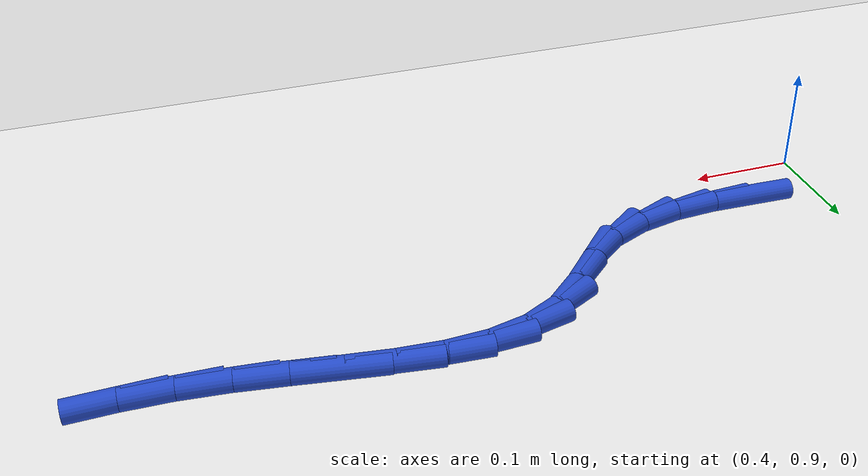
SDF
<sdf version="1.6">
 <world name="default">
  <model name="ground_plane">
   <static>1</static>
   <link name="link">
    <collision name="collision">
     <geometry><plane><normal>0 0 1</normal><size>100 100</size></plane></geometry>
     <surface><friction><ode><mu>100</mu><mu2>50</mu2></ode></friction></surface>
    </collision>
    <visual name="visual">
     <cast_shadows>0</cast_shadows>
     <geometry><plane><normal>0 0 1</normal><size>100 100</size></plane></geometry>
     <material>
      <script><uri>file://media/materials/scripts/gazebo.material</uri><name>Gazebo/WhiteGlow</name></script>
     </material>
    </visual>
   </link>
  </model>
  <model name="line">
   <link name="link_31">
    <pose>0.4720004129926945 0.955242696194853 0.01 0 1.57 -0.0336519585227161</pose>
    <collision name="collision">
     <geometry><cylinder><radius>0.01</radius><length>0.08</length></cylinder></geometry>
    </collision>
    <visual name="visual">
     <material>
      <script><name>Gazebo/Blue</name><uri>file://media/materials/scripts/gazebo.material</uri></script>
     </material>
     <geometry><cylinder><radius>0.01</radius><length>0.08</length></cylinder></geometry>
    </visual>
   </link>
   <link name="link_32">
    <pose>0.5142116258820052 0.9538216697531656 0.01 0 1.57 0.06054621515569539</pose>
    <collision name="collision">
     <geometry><cylinder><radius>0.01</radius><length>0.08</length></cylinder></geometry>
    </collision>
    <visual name="visual">
     <material>
      <script><name>Gazebo/Blue</name><uri>file://media/materials/scripts/gazebo.material</uri></script>
     </material>
     <geometry><cylinder><radius>0.01</radius><length>0.08</length></cylinder></geometry>
    </visual>
   </link>
   <link name="link_33">
    <pose>0.5547674628831326 0.9562801770887599 0.01 0 1.57 0.20453902527993625</pose>
    <collision name="collision">
     <geometry><cylinder><radius>0.01</radius><length>0.08</length></cylinder></geometry>
    </collision>
    <visual name="visual">
     <material>
      <script><name>Gazebo/Blue</name><uri>file://media/materials/scripts/gazebo.material</uri></script>
     </material>
     <geometry><cylinder><radius>0.01</radius><length>0.08</length></cylinder></geometry>
    </visual>
   </link>
   <link name="link_34">
    <pose>0.5927562676670054 0.9641605732342813 0.01 0 1.57 0.4062274194706462</pose>
    <collision name="collision">
     <geometry><cylinder><radius>0.01</radius><length>0.08</length></cylinder></geometry>
    </collision>
    <visual name="visual">
     <material>
      <script><name>Gazebo/Blue</name><uri>file://media/materials/scripts/gazebo.material</uri></script>
     </material>
     <geometry><cylinder><radius>0.01</radius><length>0.08</length></cylinder></geometry>
    </visual>
   </link>
   <link name="link_35">
    <pose>0.6272663839045518 0.9790052132223739 0.01 0 1.57 0.6578633749273951</pose>
    <collision name="collision">
     <geometry><cylinder><radius>0.01</radius><length>0.08</length></cylinder></geometry>
    </collision>
    <visual name="visual">
     <material>
      <script><name>Gazebo/Blue</name><uri>file://media/materials/scripts/gazebo.material</uri></script>
     </material>
     <geometry><cylinder><radius>0.01</radius><length>0.08</length></cylinder></geometry>
    </visual>
   </link>
   <link name="link_36">
    <pose>0.6574138727485572 1.0022997852741065 0.01 0 1.57 0.8253862525907413</pose>
    <collision name="collision">
     <geometry><cylinder><radius>0.01</radius><length>0.08</length></cylinder></geometry>
    </collision>
    <visual name="visual">
     <material>
      <script><name>Gazebo/Blue</name><uri>file://media/materials/scripts/gazebo.material</uri></script>
     </material>
     <geometry><cylinder><radius>0.01</radius><length>0.08</length></cylinder></geometry>
    </visual>
   </link>
   <link name="link_37">
    <pose>0.6843141848363187 1.0314423397881645 0.01 0 1.57 0.7411923184719813</pose>
    <collision name="collision">
     <geometry><cylinder><radius>0.01</radius><length>0.08</length></cylinder></geometry>
    </collision>
    <visual name="visual">
     <material>
      <script><name>Gazebo/Blue</name><uri>file://media/materials/scripts/gazebo.material</uri></script>
     </material>
     <geometry><cylinder><radius>0.01</radius><length>0.08</length></cylinder></geometry>
    </visual>
   </link>
   <link name="link_38">
    <pose>0.7123673513474473 1.0571187946323337 0.01 0 1.57 0.4728027053657131</pose>
    <collision name="collision">
     <geometry><cylinder><radius>0.01</radius><length>0.08</length></cylinder></geometry>
    </collision>
    <visual name="visual">
     <material>
      <script><name>Gazebo/Blue</name><uri>file://media/materials/scripts/gazebo.material</uri></script>
     </material>
     <geometry><cylinder><radius>0.01</radius><length>0.08</length></cylinder></geometry>
    </visual>
   </link>
   <link name="link_39">
    <pose>0.7443828003029087 1.0734945949288803 0.01 0 1.57 0.22557276805663648</pose>
    <collision name="collision">
     <geometry><cylinder><radius>0.01</radius><length>0.08</length></cylinder></geometry>
    </collision>
    <visual name="visual">
     <material>
      <script><name>Gazebo/Blue</name><uri>file://media/materials/scripts/gazebo.material</uri></script>
     </material>
     <geometry><cylinder><radius>0.01</radius><length>0.08</length></cylinder></geometry>
    </visual>
   </link>
   <link name="link_40">
    <pose>0.7799697166015482 1.0816610171792371 0.01 0 1.57 0.04451069179883939</pose>
    <collision name="collision">
     <geometry><cylinder><radius>0.01</radius><length>0.08</length></cylinder></geometry>
    </collision>
    <visual name="visual">
     <material>
      <script><name>Gazebo/Blue</name><uri>file://media/materials/scripts/gazebo.material</uri></script>
     </material>
     <geometry><cylinder><radius>0.01</radius><length>0.08</length></cylinder></geometry>
    </visual>
   </link>
   <link name="link_41">
    <pose>0.8184301399083151 1.0833740486639005 0.01 0 1.57 -0.0733100187703516</pose>
    <collision name="collision">
     <geometry><cylinder><radius>0.01</radius><length>0.08</length></cylinder></geometry>
    </collision>
    <visual name="visual">
     <material>
      <script><name>Gazebo/Blue</name><uri>file://media/materials/scripts/gazebo.material</uri></script>
     </material>
     <geometry><cylinder><radius>0.01</radius><length>0.08</length></cylinder></geometry>
    </visual>
   </link>
   <link name="link_42">
    <pose>0.8590661098881578 1.0803896766633683 0.01 0 1.57 -0.1397919850723292</pose>
    <collision name="collision">
     <geometry><cylinder><radius>0.01</radius><length>0.08</length></cylinder></geometry>
    </collision>
    <visual name="visual">
     <material>
      <script><name>Gazebo/Blue</name><uri>file://media/materials/scripts/gazebo.material</uri></script>
     </material>
     <geometry><cylinder><radius>0.01</radius><length>0.08</length></cylinder></geometry>
    </visual>
   </link>
   <link name="link_43">
    <pose>0.9011796662060252 1.0744638884581361 0.01 0 1.57 -0.16429459482061196</pose>
    <collision name="collision">
     <geometry><cylinder><radius>0.01</radius><length>0.08</length></cylinder></geometry>
    </collision>
    <visual name="visual">
     <material>
      <script><name>Gazebo/Blue</name><uri>file://media/materials/scripts/gazebo.material</uri></script>
     </material>
     <geometry><cylinder><radius>0.01</radius><length>0.08</length></cylinder></geometry>
    </visual>
   </link>
   <link name="link_44">
    <pose>0.9440728485268661 1.0673526713287007 0.01 0 1.57 -0.15103826738000775</pose>
    <collision name="collision">
     <geometry><cylinder><radius>0.01</radius><length>0.08</length></cylinder></geometry>
    </collision>
    <visual name="visual">
     <material>
      <script><name>Gazebo/Blue</name><uri>file://media/materials/scripts/gazebo.material</uri></script>
     </material>
     <geometry><cylinder><radius>0.01</radius><length>0.08</length></cylinder></geometry>
    </visual>
   </link>
   <link name="link_45">
    <pose>0.9870476965156283 1.0608120125555582 0.01 0 1.57 -0.09972917546945442</pose>
    <collision name="collision">
     <geometry><cylinder><radius>0.01</radius><length>0.08</length></cylinder></geometry>
    </collision>
    <visual name="visual">
     <material>
      <script><name>Gazebo/Blue</name><uri>file://media/materials/scripts/gazebo.material</uri></script>
     </material>
     <geometry><cylinder><radius>0.01</radius><length>0.08</length></cylinder></geometry>
    </visual>
   </link>
   <link name="link_46">
    <pose>1.0294138465805753 1.0565728077665497 0.01 0 1.57 -0.031086332727911035</pose>
    <collision name="collision">
     <geometry><cylinder><radius>0.01</radius><length>0.08</length></cylinder></geometry>
    </collision>
    <visual name="visual">
     <material>
      <script><name>Gazebo/Blue</name><uri>file://media/materials/scripts/gazebo.material</uri></script>
     </material>
     <geometry><cylinder><radius>0.01</radius><length>0.08</length></cylinder></geometry>
    </visual>
   </link>
   <link name="link_47">
    <pose>1.0708080224515049 1.055285599980306 0.01 0 1.57 0.020933868234990147</pose>
    <collision name="collision">
     <geometry><cylinder><radius>0.01</radius><length>0.08</length></cylinder></geometry>
    </collision>
    <visual name="visual">
     <material>
      <script><name>Gazebo/Blue</name><uri>file://media/materials/scripts/gazebo.material</uri></script>
     </material>
     <geometry><cylinder><radius>0.01</radius><length>0.08</length></cylinder></geometry>
    </visual>
   </link>
  </model>
 </world>
</sdf>
